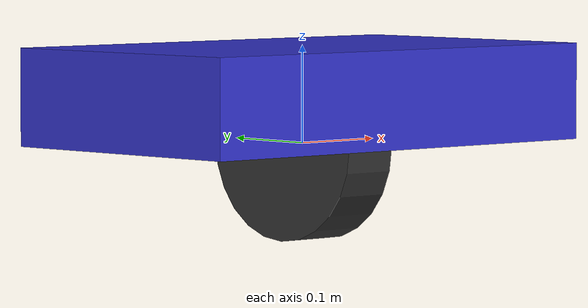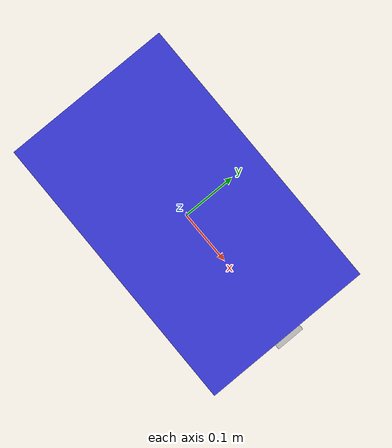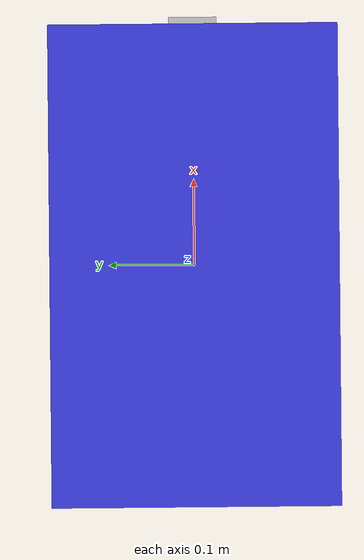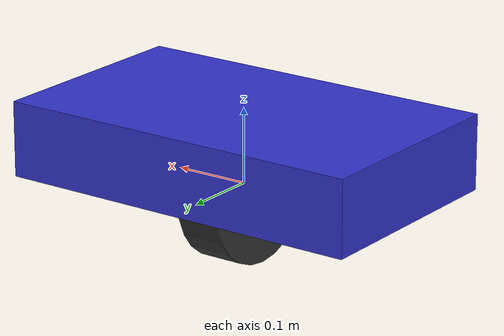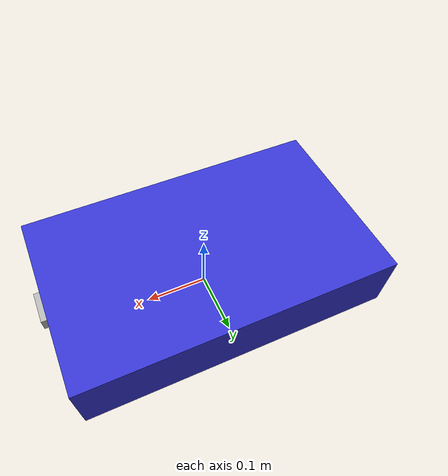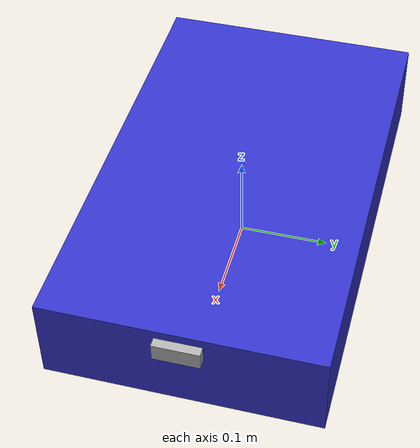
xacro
<?xml version="1.0"?>
<robot name="four_wheel_diff_drive" xmlns:xacro="http://www.ros.org/wiki/xacro">

  <!-- ******************** 可配置参数 ******************** -->
  <xacro:property name="base_length" value="0.5" />
  <xacro:property name="base_width" value="0.3" />
  <xacro:property name="base_height" value="0.1" />
  <xacro:property name="base_mass" value="12.0" />
  <xacro:property name="base_elevation" value="0.05" />

  <xacro:property name="wheel_radius" value="0.1" />
  <xacro:property name="wheel_width" value="0.06" />
  <xacro:property name="wheel_mass" value="1.0" />

  <!-- 车轮位置计算 -->
  <xacro:property name="wheel_pos_x" value="0.2" />
  <xacro:property name="wheel_pos_y" value="0.15" />
  <xacro:property name="wheel_pos_z" value="0.0" />

  <!-- 材料颜色定义 -->
  <material name="black">
    <color rgba="0.2 0.2 0.2 1.0"/>
  </material>
  <material name="red">
    <color rgba="0.8 0.2 0.2 1.0"/>
  </material>
  <material name="blue">
    <color rgba="0.2 0.2 0.8 1.0"/>
  </material>
  <material name="gray">
    <color rgba="0.7 0.7 0.7 1.0"/>
  </material>

  <!-- ******************** 惯性宏 ******************** -->
  <xacro:macro name="default_inertia" params="mass">
    <inertial>
      <origin xyz="0 0 0" rpy="0 0 0"/>
      <mass value="${mass}"/>
      <inertia
        ixx="${0.1 * mass}" ixy="0.0" ixz="0.0"
        iyy="${0.1 * mass}" iyz="0.0"
        izz="${0.1 * mass}" />
    </inertial>
  </xacro:macro>

  <!-- ******************** 车轮宏 ******************** -->
  <xacro:macro name="wheel" params="side prefix *joint_pose">
    <link name="${prefix}_${side}_wheel">
      <xacro:default_inertia mass="${wheel_mass}"/>
      <visual>
        <!-- 修正：圆柱体绕Y轴旋转使轴线朝Y方向，但差速驱动车轮应绕Y轴旋转 -->
        <origin xyz="0 0 0" rpy="0 ${pi/2} 0"/>
        <geometry>
          <cylinder radius="${wheel_radius}" length="${wheel_width}"/>
        </geometry>
        <material name="black"/>
      </visual>
      <collision>
        <origin xyz="0 0 0" rpy="0 ${pi/2} 0"/>
        <geometry>
          <cylinder radius="${wheel_radius}" length="${wheel_width}"/>
        </geometry>
      </collision>
    </link>

    <joint name="${prefix}_${side}_wheel_joint" type="continuous">
      <parent link="${prefix}_link"/>
      <child link="${prefix}_${side}_wheel"/>
      <xacro:insert_block name="joint_pose" />
      <!-- 修正：车轮绕Y轴旋转，这是正确的方向 -->
      <axis xyz="0 1 0"/>
      <limit effort="100" velocity="10"/>
      <dynamics damping="0.1" friction="0.0"/>
    </joint>
  </xacro:macro>

  <!-- ******************** 车身 (base_link) ******************** -->
  <link name="base_link">
    <xacro:default_inertia mass="${base_mass}"/>
    <visual>
      <origin xyz="0 0 ${base_elevation}" rpy="0 0 0"/>
      <geometry>
        <box size="${base_length} ${base_width} ${base_height}"/>
      </geometry>
      <material name="blue"/>
    </visual>
    <collision>
      <origin xyz="0 0 ${base_elevation}" rpy="0 0 0"/>
      <geometry>
        <box size="${base_length} ${base_width} ${base_height}"/>
      </geometry>
    </collision>
  </link>

  <!-- ******************** 四个轮子 (使用宏) ******************** -->
  <!-- 注意：差速驱动四轮配置，所有轮子绕Y轴旋转是正确的方向 -->

  <xacro:wheel side="front_left" prefix="base">
    <joint_pose xyz="${wheel_pos_x} ${wheel_pos_y} ${wheel_pos_z}" rpy="0 0 0"/>
  </xacro:wheel>

  <xacro:wheel side="front_right" prefix="base">
    <joint_pose xyz="${wheel_pos_x} ${-wheel_pos_y} ${wheel_pos_z}" rpy="0 0 0"/>
  </xacro:wheel>

  <xacro:wheel side="rear_left" prefix="base">
    <joint_pose xyz="${-wheel_pos_x} ${wheel_pos_y} ${wheel_pos_z}" rpy="0 0 0"/>
  </xacro:wheel>

  <xacro:wheel side="rear_right" prefix="base">
    <joint_pose xyz="${-wheel_pos_x} ${-wheel_pos_y} ${wheel_pos_z}" rpy="0 0 0"/>
  </xacro:wheel>

  <!-- ******************** IMU模块 ******************** -->
  <link name="imu_link">
    <inertial>
      <mass value="0.05"/>
      <inertia ixx="0.00001" ixy="0" ixz="0" iyy="0.00001" iyz="0" izz="0.00001"/>
    </inertial>
    <visual>
      <origin xyz="0 0 0" rpy="0 0 0"/>
      <geometry>
        <box size="0.03 0.03 0.02"/>
      </geometry>
      <material name="red"/>
    </visual>
    <collision>
      <origin xyz="0 0 0" rpy="0 0 0"/>
      <geometry>
        <box size="0.03 0.03 0.02"/>
      </geometry>
    </collision>
  </link>

  <joint name="imu_joint" type="fixed">
    <parent link="base_link"/>
    <child link="imu_link"/>
    <origin xyz="0.1 0 0.08" rpy="0 0 0"/>
  </joint>

  <!-- ******************** 摄像机模块 ******************** -->
  <link name="camera_link">
    <inertial>
      <mass value="0.1"/>
      <inertia ixx="0.0001" ixy="0" ixz="0" iyy="0.0001" iyz="0" izz="0.0001"/>
    </inertial>
    <visual>
      <origin xyz="0 0 0" rpy="0 0 0"/>
      <geometry>
        <box size="0.02 0.05 0.02"/>
      </geometry>
      <material name="gray"/>
    </visual>
    <collision>
      <origin xyz="0 0 0" rpy="0 0 0"/>
      <geometry>
        <box size="0.02 0.05 0.02"/>
      </geometry>
    </collision>
  </link>

  <joint name="camera_joint" type="fixed">
    <parent link="base_link"/>
    <child link="camera_link"/>
    <origin xyz="0.25 0 0.08" rpy="0 0 0"/>
  </joint>

</robot>
